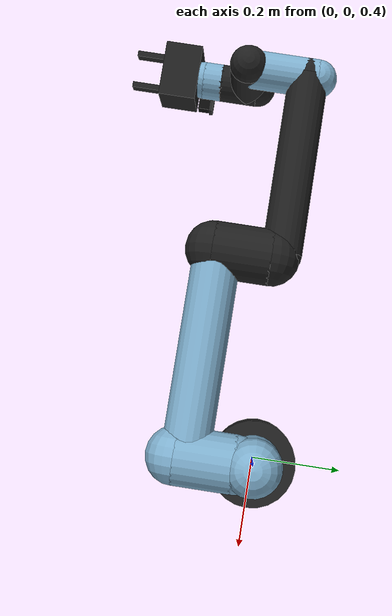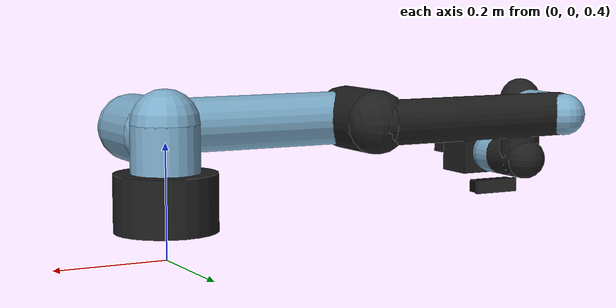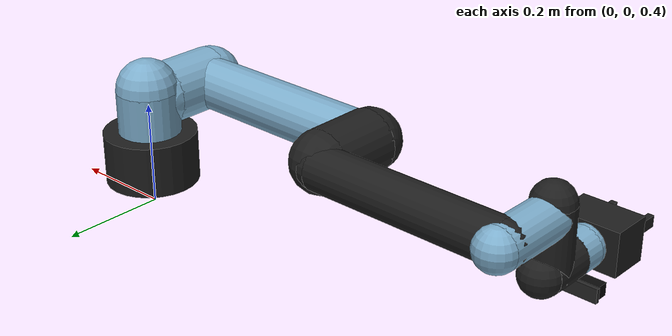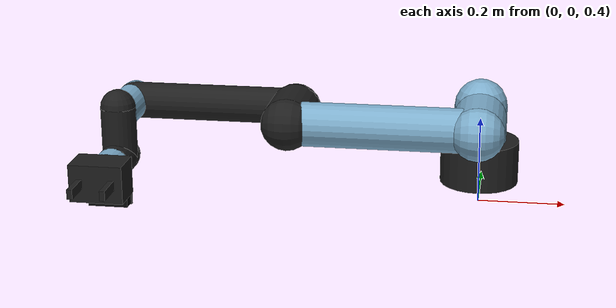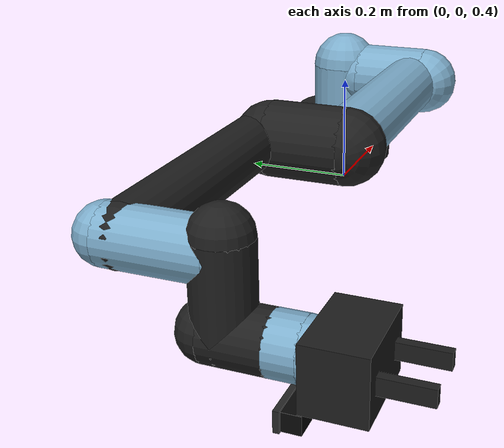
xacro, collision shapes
<?xml version="1.0"?>
<robot name="ur5e" xmlns:xacro="http://www.ros.org/wiki/xacro">
  <xacro:arg name="mujoco_model" default="$(find ur5e_mujoco_sim)/models/ur5e_robotiq_vision_scene.xml"/>
  <xacro:include filename="$(find ur5e_mujoco_sim)/config/ur5e_pid.urdf"/>
  <link name="wrist_camera_bracket">
    <inertial><origin xyz="0.025 0 -0.158"/><mass value="0.040"/>
      <inertia ixx="0.000025" iyy="0.000040" izz="0.000040" ixy="0" ixz="0" iyz="0"/>
    </inertial>
    <visual><origin xyz="0 0 -0.153"/><geometry><cylinder radius="0.044" length="0.012"/></geometry>
      <material name="camera_bracket_dark"><color rgba="0.15 0.15 0.15 1"/></material>
    </visual>
    <visual><origin xyz="0.048 0 -0.162"/><geometry><box size="0.025 0.056 0.024"/></geometry>
      <material name="camera_bracket_dark"/>
    </visual>
    <visual><origin xyz="0.068 0 -0.174"/><geometry><box size="0.028 0.096 0.008"/></geometry>
      <material name="camera_bracket_dark"/>
    </visual>
    <collision><origin xyz="0.068 0 -0.174"/><geometry><box size="0.028 0.096 0.008"/></geometry></collision>
  </link>
  <joint name="tool0_to_camera_bracket" type="fixed">
    <parent link="tool0"/><child link="wrist_camera_bracket"/>
  </joint>
  <link name="wrist_camera_link">
    <inertial><origin xyz="0 0 -0.0125"/><mass value="0.072"/>
      <inertia ixx="0.0000075" iyy="0.00005235" izz="0.00005235" ixy="0" ixz="0" iyz="0"/>
    </inertial>
    <collision><origin xyz="0 0 -0.0125"/><geometry><box size="0.09 0.025 0.025"/></geometry></collision>
    <xacro:macro name="camera_part" params="index color">
      <visual><geometry><mesh filename="package://ur5e_mujoco_sim/models/realsense_d435i/assets/d435i_${index}.obj"/></geometry>
        <material name="camera_${index}"><color rgba="${color}"/></material>
      </visual>
    </xacro:macro>
    <xacro:camera_part index="0" color="0.0356 0.0356 0.0356 1"/>
    <xacro:camera_part index="1" color="0.287 0.665 0.328 1"/>
    <xacro:camera_part index="2" color="0.80 0.81 0.80 1"/>
    <xacro:camera_part index="3" color="0.036 0.036 0.036 1"/>
    <xacro:camera_part index="4" color="0.296 0.296 0.296 1"/>
    <xacro:camera_part index="5" color="0.07 0.07 0.07 1"/>
    <xacro:camera_part index="6" color="0.07 0.07 0.07 1"/>
    <xacro:camera_part index="7" color="0.087 0.003 0.009 1"/>
    <xacro:camera_part index="8" color="1 1 1 1"/>
  </link>
  <joint name="tool0_to_wrist_camera" type="fixed">
    <parent link="tool0"/><child link="wrist_camera_link"/><origin xyz="0.068 0 -0.145" rpy="0 0 1.5707963267948966"/>
  </joint>
  <link name="wrist_camera_color_optical_frame"/>
  <joint name="wrist_camera_optical_joint" type="fixed">
    <parent link="wrist_camera_link"/><child link="wrist_camera_color_optical_frame"/>
    <origin xyz="0.0325 0 0.001"/>
  </joint>
</robot>

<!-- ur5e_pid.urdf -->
<robot name="ur5e" xmlns:xacro="http://www.ros.org/wiki/xacro">
  <xacro:arg name="mujoco_model" default="$(find ur5e_mujoco_sim)/models/ur5e_robotiq_pid_scene.xml"/>
  <!-- Capsule = cylinder plus spherical ends, matching MuJoCo collision geoms. -->
  <xacro:macro name="collision_capsule" params="radius length center end0 end1 rpy">
    <collision><origin xyz="${center}" rpy="${rpy}"/><geometry><cylinder radius="${radius}" length="${length}"/></geometry></collision>
    <collision><origin xyz="${end0}"/><geometry><sphere radius="${radius}"/></geometry></collision>
    <collision><origin xyz="${end1}"/><geometry><sphere radius="${radius}"/></geometry></collision>
  </xacro:macro>
  <material name="ur_blue"><color rgba="0.49 0.68 0.80 1"/></material>
  <material name="dark"><color rgba="0.12 0.12 0.12 1"/></material>
  <link name="world"/>
  <!-- MJCF base frame is at z=0.45 m, exactly the tabletop surface. The base
       geometry extends upward from that frame, as in the MuJoCo robot mesh. -->
  <link name="base_link">
    <visual><origin xyz="0 0 0.05"/><geometry><cylinder radius="0.09" length="0.10"/></geometry><material name="dark"/></visual>
    <collision><origin xyz="0 0 0.05"/><geometry><cylinder radius="0.09" length="0.10"/></geometry></collision>
  </link>
  <!-- MuJoCo's ur5e/base quat="0 0 0 -1" is wxyz: a pi rotation about Z. -->
  <joint name="world_to_base" type="fixed"><parent link="world"/><child link="base_link"/><origin xyz="0 0 0.45" rpy="0 0 3.14159265"/></joint>
  <link name="shoulder_link">
    <visual><origin xyz="0 0 -0.04"/><geometry><cylinder radius="0.06" length="0.12"/></geometry><material name="ur_blue"/></visual>
    <xacro:collision_capsule radius="0.06" length="0.12" center="0 0 -0.04" end0="0 0 -0.10" end1="0 0 0.02" rpy="0 0 0"/>
  </link>
  <joint name="shoulder_pan_joint" type="revolute"><parent link="base_link"/><child link="shoulder_link"/><origin xyz="0 0 0.163"/><axis xyz="0 0 1"/><limit lower="-6.283" upper="6.283" effort="150" velocity="3.14"/></joint>
  <link name="upper_arm_link">
    <visual><origin xyz="0 0 0.20"/><geometry><cylinder radius="0.05" length="0.40"/></geometry><material name="ur_blue"/></visual>
    <xacro:collision_capsule radius="0.05" length="0.40" center="0 0 0.20" end0="0 0 0" end1="0 0 0.40" rpy="0 0 0"/>
    <xacro:collision_capsule radius="0.06" length="0.12" center="0 -0.04 0" end0="0 -0.10 0" end1="0 0.02 0" rpy="1.57079632679 0 0"/>
  </link>
  <joint name="shoulder_lift_joint" type="revolute"><parent link="shoulder_link"/><child link="upper_arm_link"/><origin xyz="0 0.138 0" rpy="0 1.5707963 0"/><axis xyz="0 1 0"/><limit lower="-6.283" upper="6.283" effort="150" velocity="3.14"/></joint>
  <link name="forearm_link">
    <visual><origin xyz="0 0 0.20"/><geometry><cylinder radius="0.038" length="0.38"/></geometry><material name="dark"/></visual>
    <!-- Four millimetres of radial clearance protects against tracking error. -->
    <xacro:collision_capsule radius="0.042" length="0.38" center="0 0 0.20" end0="0 0 0.01" end1="0 0 0.39" rpy="0 0 0"/>
    <xacro:collision_capsule radius="0.059" length="0.12" center="0 0.08 0" end0="0 0.02 0" end1="0 0.14 0" rpy="1.57079632679 0 0"/>
  </link>
  <joint name="elbow_joint" type="revolute"><parent link="upper_arm_link"/><child link="forearm_link"/><origin xyz="0 -0.131 0.425"/><axis xyz="0 1 0"/><limit lower="-3.142" upper="3.142" effort="150" velocity="3.14"/></joint>
  <link name="wrist_1_link">
    <visual><geometry><cylinder radius="0.04" length="0.12"/></geometry><material name="ur_blue"/></visual>
    <!-- Match the MuJoCo wrist-1 collision capsule: axis along local y, centered at y=0.05 m. -->
    <collision><origin xyz="0 0.05 0" rpy="1.5707963 0 0"/><geometry><cylinder radius="0.04" length="0.14"/></geometry></collision>
    <collision><origin xyz="0 -0.02 0"/><geometry><sphere radius="0.04"/></geometry></collision>
    <collision><origin xyz="0 0.12 0"/><geometry><sphere radius="0.04"/></geometry></collision>
  </link>
  <joint name="wrist_1_joint" type="revolute"><parent link="forearm_link"/><child link="wrist_1_link"/><origin xyz="0 0 0.392" rpy="0 1.5707963 0"/><axis xyz="0 1 0"/><limit lower="-6.283" upper="6.283" effort="28" velocity="6.28"/></joint>
  <link name="wrist_2_link">
    <visual><origin xyz="0 0 0.04"/><geometry><cylinder radius="0.04" length="0.12"/></geometry><material name="dark"/></visual>
    <xacro:collision_capsule radius="0.04" length="0.12" center="0 0 0.04" end0="0 0 -0.02" end1="0 0 0.10" rpy="0 0 0"/>
    <xacro:collision_capsule radius="0.04" length="0.08" center="0 0.02 0.10" end0="0 -0.02 0.10" end1="0 0.06 0.10" rpy="1.57079632679 0 0"/>
  </link>
  <joint name="wrist_2_joint" type="revolute"><parent link="wrist_1_link"/><child link="wrist_2_link"/><origin xyz="0 0.127 0"/><axis xyz="0 0 1"/><limit lower="-6.283" upper="6.283" effort="28" velocity="6.28"/></joint>
  <link name="wrist_3_link">
    <visual><origin xyz="0 0 0.05"/><geometry><cylinder radius="0.035" length="0.1"/></geometry><material name="ur_blue"/></visual>
    <!-- Match the MuJoCo wrist-3 collision capsule: axis along local y, centered at y=0.08 m. -->
    <collision><origin xyz="0 0.08 0" rpy="1.5707963 0 0"/><geometry><cylinder radius="0.04" length="0.04"/></geometry></collision>
    <collision><origin xyz="0 0.06 0"/><geometry><sphere radius="0.04"/></geometry></collision>
    <collision><origin xyz="0 0.10 0"/><geometry><sphere radius="0.04"/></geometry></collision>
  </link>
  <joint name="wrist_3_joint" type="revolute"><parent link="wrist_2_link"/><child link="wrist_3_link"/><origin xyz="0 0 0.1"/><axis xyz="0 1 0"/><limit lower="-6.283" upper="6.283" effort="28" velocity="6.28"/></joint>
  <!-- tool0 is the MuJoCo Robotiq pinch site, not a solid tool body. -->
  <link name="tool0"/>
  <joint name="wrist_3_to_tool0" type="fixed"><parent link="wrist_3_link"/><child link="tool0"/><origin xyz="0 0.2558 0" rpy="0 -1.5707963 -1.5707963"/></joint>
  <!-- Approximate collision geometry of the fixed gripper housing and pads.
       The pinch frame is at the tips; the housing and fingers extend along -Z. -->
  <link name="gripper_base_link">
    <visual><origin xyz="0 0 -0.040"/><geometry><box size="0.085 0.12 0.08"/></geometry><material name="dark"/></visual>
    <collision><origin xyz="0 0 -0.040"/><geometry><box size="0.085 0.12 0.08"/></geometry></collision>
  </link>
  <joint name="tool0_to_gripper_base" type="fixed"><parent link="tool0"/><child link="gripper_base_link"/><origin xyz="0 0 -0.065"/></joint>
  <link name="left_finger">
    <visual><origin xyz="0 0 -0.05"/><geometry><box size="0.022 0.012 0.10"/></geometry><material name="dark"/></visual>
    <collision><origin xyz="0 0 -0.05"/><geometry><box size="0.022 0.012 0.10"/></geometry></collision>
  </link>
  <joint name="tool0_to_left_finger" type="fixed"><parent link="tool0"/><child link="left_finger"/><origin xyz="0 0.036 0"/></joint>
  <link name="right_finger">
    <visual><origin xyz="0 0 -0.05"/><geometry><box size="0.022 0.012 0.10"/></geometry><material name="dark"/></visual>
    <collision><origin xyz="0 0 -0.05"/><geometry><box size="0.022 0.012 0.10"/></geometry></collision>
  </link>
  <joint name="tool0_to_right_finger" type="fixed"><parent link="tool0"/><child link="right_finger"/><origin xyz="0 -0.036 0"/></joint>
  <ros2_control name="Ur5eMujocoSystem" type="system">
    <hardware>
      <plugin>mujoco_ros2_control/MujocoSystemInterface</plugin>
      <param name="mujoco_model">$(arg mujoco_model)</param>
      <param name="initial_keyframe">ur5e/home</param>
      <param name="sim_speed_factor">1.0</param>
      <param name="headless">false</param>
    </hardware>
    <joint name="shoulder_pan_joint">
      <command_interface name="effort"/>
      <state_interface name="position"><param name="initial_value">-1.5708</param></state_interface>
      <state_interface name="velocity"/>
    </joint>
    <joint name="shoulder_lift_joint">
      <command_interface name="effort"/>
      <state_interface name="position"><param name="initial_value">-1.5708</param></state_interface>
      <state_interface name="velocity"/>
    </joint>
    <joint name="elbow_joint">
      <command_interface name="effort"/>
      <state_interface name="position"><param name="initial_value">1.5708</param></state_interface>
      <state_interface name="velocity"/>
    </joint>
    <joint name="wrist_1_joint">
      <command_interface name="effort"/>
      <state_interface name="position"><param name="initial_value">-1.5708</param></state_interface>
      <state_interface name="velocity"/>
    </joint>
    <joint name="wrist_2_joint">
      <command_interface name="effort"/>
      <state_interface name="position"><param name="initial_value">-1.5708</param></state_interface>
      <state_interface name="velocity"/>
    </joint>
    <joint name="wrist_3_joint">
      <command_interface name="effort"/>
      <state_interface name="position"><param name="initial_value">0.0</param></state_interface>
      <state_interface name="velocity"/>
    </joint>
    <joint name="gripper_joint">
      <command_interface name="position"/>
      <state_interface name="position"><param name="initial_value">0.0</param></state_interface>
      <state_interface name="velocity"/>
    </joint>
  </ros2_control>
  <link name="gripper_link"/>
  <joint name="gripper_joint" type="revolute">
    <parent link="tool0"/><child link="gripper_link"/>
    <axis xyz="1 0 0"/><limit lower="0.0" upper="0.8" effort="5.0" velocity="1.0"/>
  </joint>
</robot>
